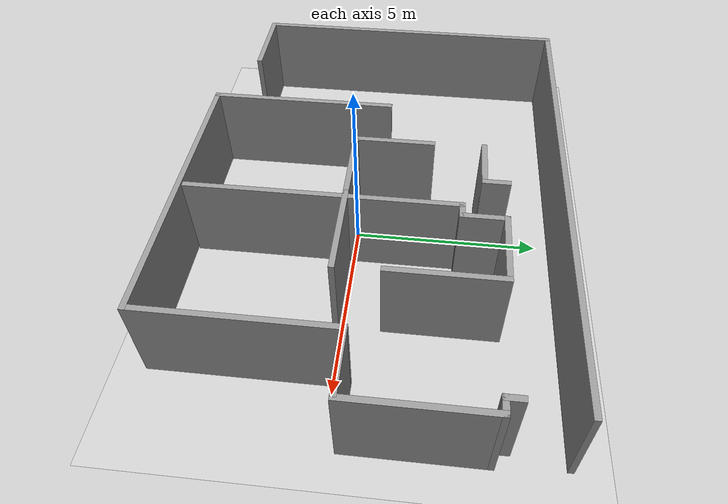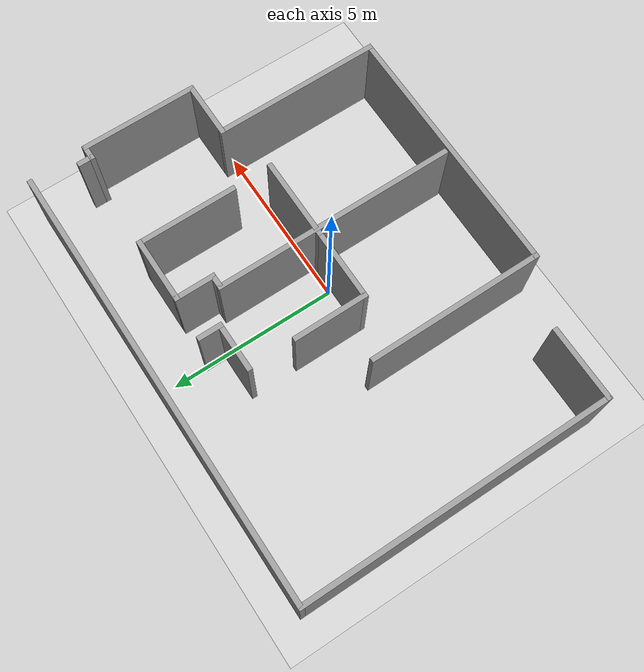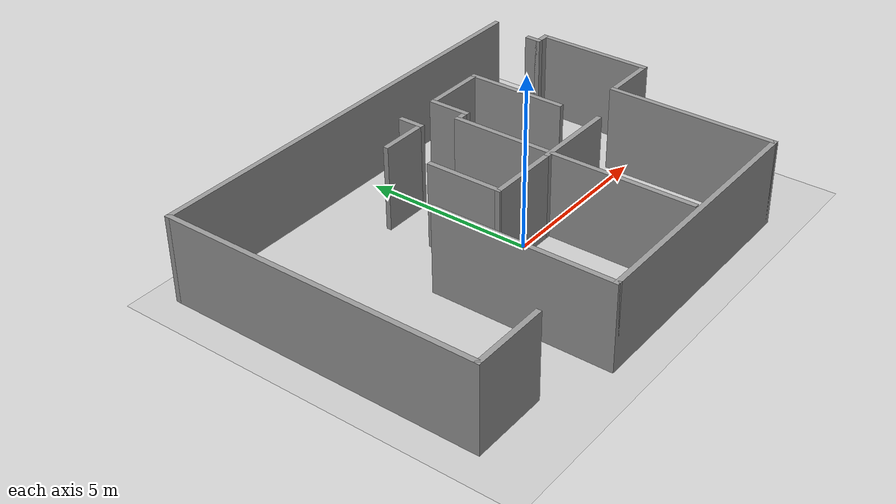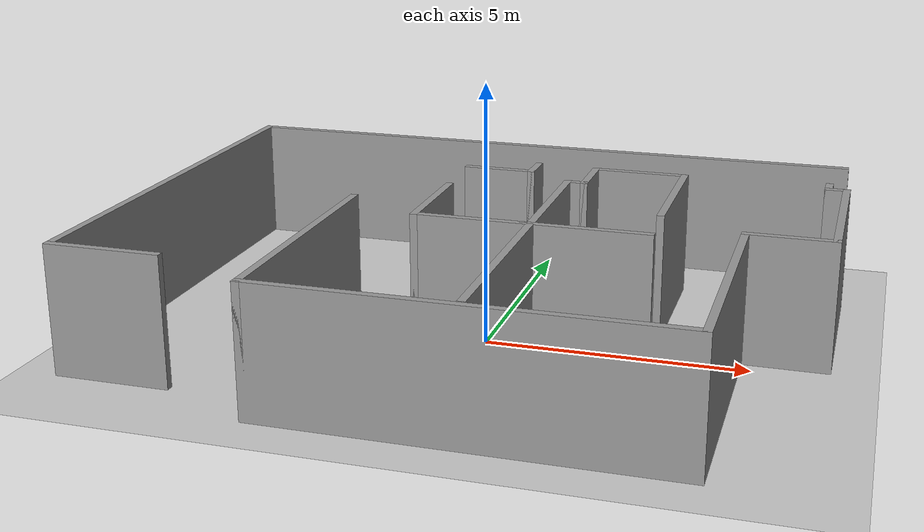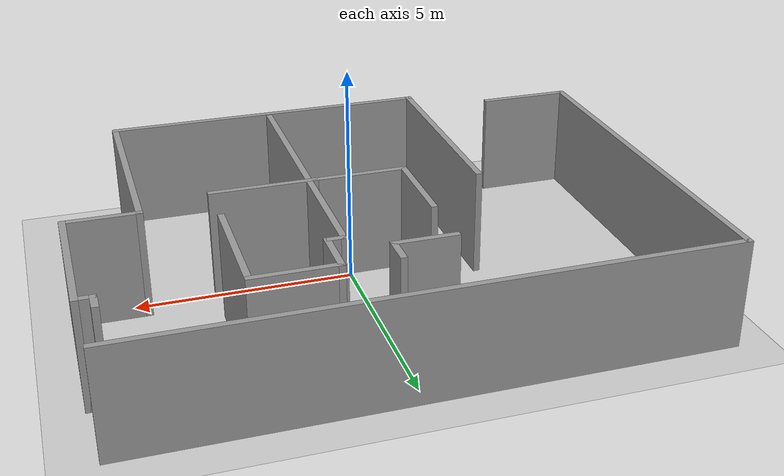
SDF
<sdf version="1.6">
 <world name="default">
  <light name="sun" type="directional">
   <pose>0 0 10 0 -0 0</pose>
   <diffuse>0.8 0.8 0.8 1</diffuse>
   <specular>0.2 0.2 0.2 1</specular>
   <attenuation>
    <range>1000</range>
    <constant>0.9</constant>
    <linear>0.01</linear>
    <quadratic>0.001</quadratic>
   </attenuation>
   <direction>-0.5 0.1 -0.9</direction>
  </light>
  <model name="ground_plane">
   <static>1</static>
   <link name="link">
    <collision name="collision">
     <geometry><plane><normal>0 0 1</normal><size>100 100</size></plane></geometry>
     <surface>
      <contact><collide_bitmask>65535</collide_bitmask></contact>
      <friction><ode><mu>100</mu><mu2>50</mu2></ode></friction>
     </surface>
    </collision>
    <visual name="visual">
     <cast_shadows>0</cast_shadows>
     <geometry><plane><normal>0 0 1</normal><size>100 100</size></plane></geometry>
     <material>
      <script><uri>file://media/materials/scripts/gazebo.material</uri><name>Gazebo/Grey</name></script>
     </material>
    </visual>
   </link>
  </model>
  <gravity>0 0 -9.8</gravity>
  <magnetic_field>6e-06 2.3e-05 -4.2e-05</magnetic_field>
  <atmosphere type="adiabatic"/>
  <physics name="default_physics" default="0" type="ode">
   <max_step_size>0.001</max_step_size>
   <real_time_factor>1</real_time_factor>
   <real_time_update_rate>1000</real_time_update_rate>
  </physics>
  <scene><ambient>0.4 0.4 0.4 1</ambient><background>0.7 0.7 0.7 1</background><shadows>1</shadows></scene>
  <audio><device>default</device></audio>
  <spherical_coordinates>
   <surface_model>EARTH_WGS84</surface_model>
   <latitude_deg>0</latitude_deg>
   <longitude_deg>0</longitude_deg>
   <elevation>0</elevation>
   <heading_deg>0</heading_deg>
  </spherical_coordinates>
  <model name="TapasSALT">
   <pose>-0.284629 0.46692 0 0 -0 0</pose>
   <link name="Wall_1">
    <collision name="Wall_1_Collision">
     <geometry><box><size>5.25 0.15 2.5</size></box></geometry>
     <pose>0 0 1.25 0 -0 0</pose>
    </collision>
    <visual name="Wall_1_Visual">
     <pose>0 0 1.25 0 -0 0</pose>
     <geometry><box><size>5.25 0.15 2.5</size></box></geometry>
     <material>
      <script><uri>file://media/materials/scripts/gazebo.material</uri><name>Gazebo/Grey</name></script>
      <ambient>1 1 1 1</ambient>
     </material>
     <meta><layer>0</layer></meta>
    </visual>
    <pose>-2.5931 -2.41089 0 0 -0 -1.5708</pose>
   </link>
   <link name="Wall_10">
    <collision name="Wall_10_Collision">
     <geometry><box><size>9.25 0.15 2.5</size></box></geometry>
     <pose>0 0 1.25 0 -0 0</pose>
    </collision>
    <visual name="Wall_10_Visual">
     <pose>0 0 1.25 0 -0 0</pose>
     <geometry><box><size>9.25 0.15 2.5</size></box></geometry>
     <material>
      <script><uri>file://media/materials/scripts/gazebo.material</uri><name>Gazebo/Grey</name></script>
      <ambient>1 1 1 1</ambient>
     </material>
     <meta><layer>0</layer></meta>
    </visual>
    <pose>-6.6069 0.410893 0 0 -0 -1.5708</pose>
   </link>
   <link name="Wall_11">
    <collision name="Wall_11_Collision">
     <geometry><box><size>2.25 0.15 2.5</size></box></geometry>
     <pose>0 0 1.25 0 -0 0</pose>
    </collision>
    <visual name="Wall_11_Visual">
     <pose>0 0 1.25 0 -0 0</pose>
     <geometry><box><size>2.25 0.15 2.5</size></box></geometry>
     <material>
      <script><uri>file://media/materials/scripts/gazebo.material</uri><name>Gazebo/Grey</name></script>
      <ambient>1 1 1 1</ambient>
     </material>
     <meta><layer>0</layer></meta>
    </visual>
    <pose>-5.5569 -4.13911 0 0 -0 0</pose>
   </link>
   <link name="Wall_13">
    <collision name="Wall_13_Collision">
     <geometry><box><size>7.25 0.15 2.5</size></box></geometry>
     <pose>0 0 1.25 0 -0 0</pose>
    </collision>
    <visual name="Wall_13_Visual">
     <pose>0 0 1.25 0 -0 0</pose>
     <geometry><box><size>7.25 0.15 2.5</size></box></geometry>
     <material>
      <script><uri>file://media/materials/scripts/gazebo.material</uri><name>Gazebo/Grey</name></script>
      <ambient>1 1 1 1</ambient>
     </material>
     <meta><layer>0</layer></meta>
    </visual>
    <pose>1.17306 -1.22709 0 0 -0 1.5708</pose>
   </link>
   <link name="Wall_14">
    <collision name="Wall_14_Collision">
     <geometry><box><size>0.5 0.15 2.5</size></box></geometry>
     <pose>0 0 1.25 0 -0 0</pose>
    </collision>
    <visual name="Wall_14_Visual">
     <pose>0 0 1.25 0 -0 0</pose>
     <geometry><box><size>0.5 0.15 2.5</size></box></geometry>
     <material>
      <script><uri>file://media/materials/scripts/gazebo.material</uri><name>Gazebo/Grey</name></script>
      <ambient>1 1 1 1</ambient>
     </material>
     <meta><layer>0</layer></meta>
    </visual>
    <pose>1.34806 2.32291 0 0 -0 0</pose>
   </link>
   <link name="Wall_15">
    <collision name="Wall_15_Collision">
     <geometry><box><size>1.25 0.15 2.5</size></box></geometry>
     <pose>0 0 1.25 0 -0 0</pose>
    </collision>
    <visual name="Wall_15_Visual">
     <pose>0 0 1.25 0 -0 0</pose>
     <geometry><box><size>1.25 0.15 2.5</size></box></geometry>
     <material>
      <script><uri>file://media/materials/scripts/gazebo.material</uri><name>Gazebo/Grey</name></script>
      <ambient>1 1 1 1</ambient>
     </material>
     <meta><layer>0</layer></meta>
    </visual>
    <pose>1.52306 2.87291 0 0 -0 1.5708</pose>
   </link>
   <link name="Wall_16">
    <collision name="Wall_16_Collision">
     <geometry><box><size>2 0.15 2.5</size></box></geometry>
     <pose>0 0 1.25 0 -0 0</pose>
    </collision>
    <visual name="Wall_16_Visual">
     <pose>0 0 1.25 0 -0 0</pose>
     <geometry><box><size>2 0.15 2.5</size></box></geometry>
     <material>
      <script><uri>file://media/materials/scripts/gazebo.material</uri><name>Gazebo/Grey</name></script>
      <ambient>1 1 1 1</ambient>
     </material>
     <meta><layer>0</layer></meta>
    </visual>
    <pose>2.44806 3.42291 0 0 -0 0</pose>
   </link>
   <link name="Wall_17">
    <collision name="Wall_17_Collision">
     <geometry><box><size>3 0.15 2.5</size></box></geometry>
     <pose>0 0 1.25 0 -0 0</pose>
    </collision>
    <visual name="Wall_17_Visual">
     <pose>0 0 1.25 0 -0 0</pose>
     <geometry><box><size>3 0.15 2.5</size></box></geometry>
     <material>
      <script><uri>file://media/materials/scripts/gazebo.material</uri><name>Gazebo/Grey</name></script>
      <ambient>1 1 1 1</ambient>
     </material>
     <meta><layer>0</layer></meta>
    </visual>
    <pose>3.37306 1.99791 0 0 -0 -1.5708</pose>
   </link>
   <link name="Wall_2">
    <collision name="Wall_2_Collision">
     <geometry><box><size>7.75 0.15 2.5</size></box></geometry>
     <pose>0 0 1.25 0 -0 0</pose>
    </collision>
    <visual name="Wall_2_Visual">
     <pose>0 0 1.25 0 -0 0</pose>
     <geometry><box><size>7.75 0.15 2.5</size></box></geometry>
     <material>
      <script><uri>file://media/materials/scripts/gazebo.material</uri><name>Gazebo/Grey</name></script>
      <ambient>1 1 1 1</ambient>
     </material>
     <meta><layer>0</layer></meta>
    </visual>
    <pose>1.2069 -4.96089 0 0 -0 0</pose>
   </link>
   <link name="Wall_20">
    <collision name="Wall_20_Collision">
     <geometry><box><size>2.25 0.15 2.5</size></box></geometry>
     <pose>0 0 1.25 0 -0 0</pose>
    </collision>
    <visual name="Wall_20_Visual">
     <pose>0 0 1.25 0 -0 0</pose>
     <geometry><box><size>2.25 0.15 2.5</size></box></geometry>
     <material>
      <script><uri>file://media/materials/scripts/gazebo.material</uri><name>Gazebo/Grey</name></script>
      <ambient>1 1 1 1</ambient>
     </material>
     <meta><layer>0</layer></meta>
    </visual>
    <pose>-1.06129 0.413286 0 0 -0 1.5708</pose>
   </link>
   <link name="Wall_22">
    <collision name="Wall_22_Collision">
     <geometry><box><size>1.5 0.15 2.5</size></box></geometry>
     <pose>0 0 1.25 0 -0 0</pose>
    </collision>
    <visual name="Wall_22_Visual">
     <pose>0 0 1.25 0 -0 0</pose>
     <geometry><box><size>1.5 0.15 2.5</size></box></geometry>
     <material>
      <script><uri>file://media/materials/scripts/gazebo.material</uri><name>Gazebo/Grey</name></script>
      <ambient>1 1 1 1</ambient>
     </material>
     <meta><layer>0</layer></meta>
    </visual>
    <pose>-0.39561 2.87914 0 0 -0 0</pose>
   </link>
   <link name="Wall_25">
    <collision name="Wall_25_Collision">
     <geometry><box><size>0.75 0.15 2.5</size></box></geometry>
     <pose>0 0 1.25 0 -0 0</pose>
    </collision>
    <visual name="Wall_25_Visual">
     <pose>0 0 1.25 0 -0 0</pose>
     <geometry><box><size>0.75 0.15 2.5</size></box></geometry>
     <material>
      <script><uri>file://media/materials/scripts/gazebo.material</uri><name>Gazebo/Grey</name></script>
      <ambient>1 1 1 1</ambient>
     </material>
     <meta><layer>0</layer></meta>
    </visual>
    <pose>0.27939 3.17914 0 0 -0 1.5708</pose>
   </link>
   <link name="Wall_27">
    <collision name="Wall_27_Collision">
     <geometry><box><size>2.25 0.15 2.5</size></box></geometry>
     <pose>0 0 1.25 0 -0 0</pose>
    </collision>
    <visual name="Wall_27_Visual">
     <pose>0 0 1.25 0 -0 0</pose>
     <geometry><box><size>2.25 0.15 2.5</size></box></geometry>
     <material>
      <script><uri>file://media/materials/scripts/gazebo.material</uri><name>Gazebo/Grey</name></script>
      <ambient>1 1 1 1</ambient>
     </material>
     <meta><layer>0</layer></meta>
    </visual>
    <pose>-0.011288 -0.636714 0 0 -0 0</pose>
   </link>
   <link name="Wall_29">
    <collision name="Wall_29_Collision">
     <geometry><box><size>2.5 0.15 2.5</size></box></geometry>
     <pose>0 0 1.25 0 -0 0</pose>
    </collision>
    <visual name="Wall_29_Visual">
     <pose>0 0 1.25 0 -0 0</pose>
     <geometry><box><size>2.5 0.15 2.5</size></box></geometry>
     <material>
      <script><uri>file://media/materials/scripts/gazebo.material</uri><name>Gazebo/Grey</name></script>
      <ambient>1 1 1 1</ambient>
     </material>
     <meta><layer>0</layer></meta>
    </visual>
    <pose>2.21371 -0.636714 0 0 -0 0</pose>
   </link>
   <link name="Wall_3">
    <collision name="Wall_3_Collision">
     <geometry><box><size>5 0.15 2.5</size></box></geometry>
     <pose>0 0 1.25 0 -0 0</pose>
    </collision>
    <visual name="Wall_3_Visual">
     <pose>0 0 1.25 0 -0 0</pose>
     <geometry><box><size>5 0.15 2.5</size></box></geometry>
     <material>
      <script><uri>file://media/materials/scripts/gazebo.material</uri><name>Gazebo/Grey</name></script>
      <ambient>1 1 1 1</ambient>
     </material>
     <meta><layer>0</layer></meta>
    </visual>
    <pose>5.0069 -2.53589 0 0 -0 1.5708</pose>
   </link>
   <link name="Wall_4">
    <collision name="Wall_4_Collision">
     <geometry><box><size>1.75 0.15 2.5</size></box></geometry>
     <pose>0 0 1.25 0 -0 0</pose>
    </collision>
    <visual name="Wall_4_Visual">
     <pose>0 0 1.25 0 -0 0</pose>
     <geometry><box><size>1.75 0.15 2.5</size></box></geometry>
     <material>
      <script><uri>file://media/materials/scripts/gazebo.material</uri><name>Gazebo/Grey</name></script>
      <ambient>1 1 1 1</ambient>
     </material>
     <meta><layer>0</layer></meta>
    </visual>
    <pose>5.8069 -0.110893 0 0 -0 0</pose>
   </link>
   <link name="Wall_5">
    <collision name="Wall_5_Collision">
     <geometry><box><size>3.5 0.15 2.5</size></box></geometry>
     <pose>0 0 1.25 0 -0 0</pose>
    </collision>
    <visual name="Wall_5_Visual">
     <pose>0 0 1.25 0 -0 0</pose>
     <geometry><box><size>3.5 0.15 2.5</size></box></geometry>
     <material>
      <script><uri>file://media/materials/scripts/gazebo.material</uri><name>Gazebo/Grey</name></script>
      <ambient>1 1 1 1</ambient>
     </material>
     <meta><layer>0</layer></meta>
    </visual>
    <pose>6.6069 1.56411 0 0 -0 1.5708</pose>
   </link>
   <link name="Wall_6">
    <collision name="Wall_6_Collision">
     <geometry><box><size>0.5 0.15 2.5</size></box></geometry>
     <pose>0 0 1.25 0 -0 0</pose>
    </collision>
    <visual name="Wall_6_Visual">
     <pose>0 0 1.25 0 -0 0</pose>
     <geometry><box><size>0.5 0.15 2.5</size></box></geometry>
     <material>
      <script><uri>file://media/materials/scripts/gazebo.material</uri><name>Gazebo/Grey</name></script>
      <ambient>1 1 1 1</ambient>
     </material>
     <meta><layer>0</layer></meta>
    </visual>
    <pose>6.4319 3.23911 0 0 -0 3.14159</pose>
   </link>
   <link name="Wall_7">
    <collision name="Wall_7_Collision">
     <geometry><box><size>0.5 0.15 2.5</size></box></geometry>
     <pose>0 0 1.25 0 -0 0</pose>
    </collision>
    <visual name="Wall_7_Visual">
     <pose>0 0 1.25 0 -0 0</pose>
     <geometry><box><size>0.5 0.15 2.5</size></box></geometry>
     <material>
      <script><uri>file://media/materials/scripts/gazebo.material</uri><name>Gazebo/Grey</name></script>
      <ambient>1 1 1 1</ambient>
     </material>
     <meta><layer>0</layer></meta>
    </visual>
    <pose>6.2569 3.41411 0 0 -0 1.5708</pose>
   </link>
   <link name="Wall_9">
    <collision name="Wall_9_Collision">
     <geometry><box><size>13.25 0.15 2.5</size></box></geometry>
     <pose>0 0 1.25 0 -0 0</pose>
    </collision>
    <visual name="Wall_9_Visual">
     <pose>0 0 1.25 0 -0 0</pose>
     <geometry><box><size>13.25 0.15 2.5</size></box></geometry>
     <material>
      <script><uri>file://media/materials/scripts/gazebo.material</uri><name>Gazebo/Grey</name></script>
      <ambient>1 1 1 1</ambient>
     </material>
     <meta><layer>0</layer></meta>
    </visual>
    <pose>-0.056901 4.96089 0 0 -0 3.14159</pose>
   </link>
   <static>1</static>
  </model>
 </world>
</sdf>
